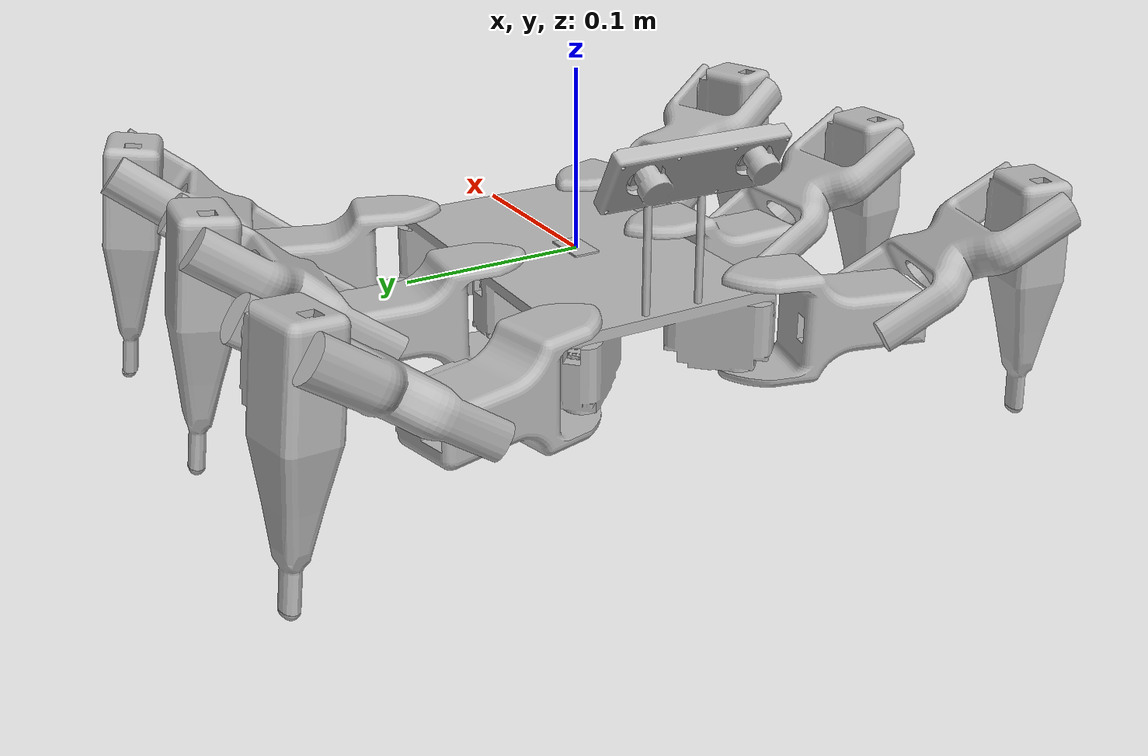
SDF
<sdf version='1.7'>
  <model name='hexaurdf10'>
    <link name='base_link'>
      <inertial>
        <pose>-0.004753 -1.4e-05 -0.012059 0 -0 0</pose>
        <mass>0.589552</mass>
        <inertia>
          <ixx>3.1084</ixx>
          <ixy>-0.254602</ixy>
          <ixz>2.03206</ixz>
          <iyy>6.37928</iyy>
          <iyz>0.164179</iyz>
          <izz>5.33195</izz>
        </inertia>
      </inertial>
      <collision name='base_link_collision'>
        <pose>0 0 0 0 -0 0</pose>
        <geometry>
          <mesh>
            <scale>1 1 1</scale>
            <uri>model://hexaurdf10/meshes/base_link.STL</uri>
          </mesh>
        </geometry>
      </collision>
      <collision name='base_link_fixed_joint_lump__camera_link_collision_1'>
        <pose>-0.113664 0.000281 0.073621 0 0.523599 3.12647</pose>
        <geometry>
          <mesh>
            <scale>1 1 1</scale>
            <uri>model://hexaurdf10/meshes/camera_link.STL</uri>
          </mesh>
        </geometry>
        <surface>
          <contact>
            <ode/>
          </contact>
          <friction>
            <ode/>
          </friction>
        </surface>
      </collision>
      <collision name='base_link_fixed_joint_lump__imu_link_collision_2'>
        <pose>-0.0001 0 0.001 0 -0 0</pose>
        <geometry>
          <mesh>
            <scale>1 1 1</scale>
            <uri>model://hexaurdf10/meshes/imu_link.STL</uri>
          </mesh>
        </geometry>
        <surface>
          <contact>
            <ode/>
          </contact>
          <friction>
            <ode/>
          </friction>
        </surface>
      </collision>
      <visual name='base_link_visual'>
        <pose>0 0 0 0 -0 0</pose>
        <geometry>
          <mesh>
            <scale>1 1 1</scale>
            <uri>model://hexaurdf10/meshes/base_link.STL</uri>
          </mesh>
        </geometry>
      </visual>
      <visual name='base_link_fixed_joint_lump__camera_link_visual_1'>
        <pose>-0.113664 0.000281 0.073621 0 0.523599 3.12647</pose>
        <geometry>
          <mesh>
            <scale>1 1 1</scale>
            <uri>model://hexaurdf10/meshes/camera_link.STL</uri>
          </mesh>
        </geometry>
      </visual>
      <visual name='base_link_fixed_joint_lump__imu_link_visual_2'>
        <pose>-0.0001 0 0.001 0 -0 0</pose>
        <geometry>
          <mesh>
            <scale>1 1 1</scale>
            <uri>model://hexaurdf10/meshes/imu_link.STL</uri>
          </mesh>
        </geometry>
      </visual>
      <sensor name='camera_link_camera' type='depth'>
        <update_rate>20</update_rate>
        <camera>
          <horizontal_fov>1.0472</horizontal_fov>
          <image>
            <width>640</width>
            <height>480</height>
            <format>R8G8B8</format>
          </image>
          <clip>
            <near>0.05</near>
            <far>3</far>
          </clip>
        </camera>
        <plugin name='camera_link_controller' filename='libgazebo_ros_openni_kinect.so'>
          <baseline>0.2</baseline>
          <alwaysOn>1</alwaysOn>
          <updateRate>1.0</updateRate>
          <cameraName>camera_link_ir</cameraName>
          <imageTopicName>/camera_link/color/image_raw</imageTopicName>
          <cameraInfoTopicName>/camera_link/color/camera_info</cameraInfoTopicName>
          <depthImageTopicName>/camera_link/depth/image_raw</depthImageTopicName>
          <depthImageInfoTopicName>/camera_link/depth/camera_info</depthImageInfoTopicName>
          <pointCloudTopicName>/camera_link/depth/points</pointCloudTopicName>
          <frameName>camera_link</frameName>
          <pointCloudCutoff>0.5</pointCloudCutoff>
          <pointCloudCutoffMax>3.0</pointCloudCutoffMax>
          <distortionK1>0.00000001</distortionK1>
          <distortionK2>0.00000001</distortionK2>
          <distortionK3>0.00000001</distortionK3>
          <distortionT1>0.00000001</distortionT1>
          <distortionT2>0.00000001</distortionT2>
          <CxPrime>0</CxPrime>
          <Cx>0</Cx>
          <Cy>0</Cy>
          <focalLength>0</focalLength>
          <hackBaseline>0</hackBaseline>
        </plugin>
        <pose>-0.113664 0.000281 0.073621 0 0.523599 3.12647</pose>
      </sensor>
      <gravity>1</gravity>
      <sensor name='imu_sensor' type='imu'>
        <always_on>1</always_on>
        <update_rate>100</update_rate>
        <visualize>1</visualize>
        <topic>__default_topic__</topic>
        <plugin name='imu_plugin' filename='libgazebo_ros_imu_sensor.so'>
          <topicName>imu</topicName>
          <bodyName>imu_link</bodyName>
          <updateRateHZ>10.0</updateRateHZ>
          <gaussianNoise>0.0</gaussianNoise>
          <xyzOffset>0 0 0</xyzOffset>
          <rpyOffset>0 0 0</rpyOffset>
          <frameName>imu_link</frameName>
          <initialOrientationAsReference>0</initialOrientationAsReference>
        </plugin>
        <pose>-0.0001 0 0.001 0 -0 0</pose>
      </sensor>
    </link>
    <joint name='j_c1_lf' type='revolute'>
      <pose relative_to='base_link'>-0.087434 -0.047179 -0.05093 0 -0 0</pose>
      <parent>base_link</parent>
      <child>c1_lf</child>
      <axis>
        <xyz>0 0 -1</xyz>
        <limit>
          <lower>-1.57</lower>
          <upper>1.57</upper>
          <effort>100</effort>
          <velocity>100</velocity>
        </limit>
        <dynamics>
          <spring_reference>0</spring_reference>
          <spring_stiffness>0</spring_stiffness>
        </dynamics>
      </axis>
    </joint>
    <link name='c1_lf'>
      <pose relative_to='j_c1_lf'>0 0 0 0 -0 0</pose>
      <inertial>
        <pose>-0.010556 -0.053368 0.028245 0 -0 0</pose>
        <mass>0.11513</mass>
        <inertia>
          <ixx>0.00514111</ixx>
          <ixy>-0.000575303</ixy>
          <ixz>-2.4729e-05</ixz>
          <iyy>0.00819157</iyy>
          <iyz>-1.92231e-05</iyz>
          <izz>0.00113798</izz>
        </inertia>
      </inertial>
      <collision name='c1_lf_collision'>
        <pose>0 0 0 0 -0 0</pose>
        <geometry>
          <mesh>
            <scale>1 1 1</scale>
            <uri>model://hexaurdf10/meshes/c1_lf.STL</uri>
          </mesh>
        </geometry>
      </collision>
      <visual name='c1_lf_visual'>
        <pose>0 0 0 0 -0 0</pose>
        <geometry>
          <mesh>
            <scale>1 1 1</scale>
            <uri>model://hexaurdf10/meshes/c1_lf.STL</uri>
          </mesh>
        </geometry>
      </visual>
    </link>
    <joint name='j_thigh_lf' type='revolute'>
      <pose relative_to='c1_lf'>0.015709 -0.086037 0.0282 0 -0 0</pose>
      <parent>c1_lf</parent>
      <child>thigh_lf</child>
      <axis>
        <xyz>-0.990437 0.137968 0</xyz>
        <limit>
          <lower>-1.57</lower>
          <upper>1.57</upper>
          <effort>100</effort>
          <velocity>100</velocity>
        </limit>
        <dynamics>
          <spring_reference>0</spring_reference>
          <spring_stiffness>0</spring_stiffness>
        </dynamics>
      </axis>
    </joint>
    <link name='thigh_lf'>
      <pose relative_to='j_thigh_lf'>0 0 0 0 -0 0</pose>
      <inertial>
        <pose>-0.040507 -0.036953 0.025841 0 -0 0</pose>
        <mass>0.066086</mass>
        <inertia>
          <ixx>0.00514111</ixx>
          <ixy>-0.000575303</ixy>
          <ixz>-2.4729e-05</ixz>
          <iyy>0.00819157</iyy>
          <iyz>-1.92231e-05</iyz>
          <izz>0.00113798</izz>
        </inertia>
      </inertial>
      <collision name='thigh_lf_collision'>
        <pose>0 0 0 0 -0 0</pose>
        <geometry>
          <mesh>
            <scale>1 1 1</scale>
            <uri>model://hexaurdf10/meshes/thigh_lf.STL</uri>
          </mesh>
        </geometry>
      </collision>
      <visual name='thigh_lf_visual'>
        <pose>0 0 0 0 -0 0</pose>
        <geometry>
          <mesh>
            <scale>1 1 1</scale>
            <uri>model://hexaurdf10/meshes/thigh_lf.STL</uri>
          </mesh>
        </geometry>
      </visual>
    </link>
    <joint name='j_tibia_lf' type='revolute'>
      <pose relative_to='thigh_lf'>-0.023019 -0.082153 0.048284 0 -0 0</pose>
      <parent>thigh_lf</parent>
      <child>tibia_lf</child>
      <axis>
        <xyz>-0.990437 0.137968 0</xyz>
        <limit>
          <lower>-1.57</lower>
          <upper>1.57</upper>
          <effort>100</effort>
          <velocity>100</velocity>
        </limit>
        <dynamics>
          <spring_reference>0</spring_reference>
          <spring_stiffness>0</spring_stiffness>
        </dynamics>
      </axis>
    </joint>
    <link name='tibia_lf'>
      <pose relative_to='j_tibia_lf'>0 0 0 0 -0 0</pose>
      <inertial>
        <pose>-0.03042 0.006502 -0.024404 0 -0 0</pose>
        <mass>0.083403</mass>
        <inertia>
          <ixx>0.00514332</ixx>
          <ixy>-0.000575305</ixy>
          <ixz>-2.4807e-05</ixz>
          <iyy>0.00819378</iyy>
          <iyz>-1.93052e-05</iyz>
          <izz>0.00113799</izz>
        </inertia>
      </inertial>
      <collision name='tibia_lf_collision'>
        <pose>0 0 0 0 -0 0</pose>
        <geometry>
          <mesh>
            <scale>1 1 1</scale>
            <uri>model://hexaurdf10/meshes/tibia_lf.STL</uri>
          </mesh>
        </geometry>
      </collision>
      <collision name='tibia_lf_fixed_joint_lump__tip6_collision_1'>
        <pose>-0.033825 0.002881 -0.121195 0 -0 0</pose>
        <geometry>
          <mesh>
            <scale>1 1 1</scale>
            <uri>model://hexaurdf10/meshes/tip6.STL</uri>
          </mesh>
        </geometry>
        <surface>
          <contact>
            <ode>
              <kp>1e+06</kp>
              <kd>1</kd>
            </ode>
          </contact>
          <friction>
            <ode>
              <mu>2000</mu>
              <mu2>1000</mu2>
            </ode>
          </friction>
        </surface>
      </collision>
      <visual name='tibia_lf_visual'>
        <pose>0 0 0 0 -0 0</pose>
        <geometry>
          <mesh>
            <scale>1 1 1</scale>
            <uri>model://hexaurdf10/meshes/tibia_lf.STL</uri>
          </mesh>
        </geometry>
      </visual>
      <visual name='tibia_lf_fixed_joint_lump__tip6_visual_1'>
        <pose>-0.033825 0.002881 -0.121195 0 -0 0</pose>
        <geometry>
          <mesh>
            <scale>1 1 1</scale>
            <uri>model://hexaurdf10/meshes/tip6.STL</uri>
          </mesh>
        </geometry>
      </visual>
      <sensor name='tip6_sensor' type='contact'>
        <always_on>1</always_on>
        <contact>
          <collision>tibia_lf_fixed_joint_lump__tip6_collision_5</collision>
          <topic>__default_topic__</topic>
        </contact>
        <plugin name='tip6_plugin' filename='libgazebo_ros_bumper.so'>
          <bumperTopicName>tip6_contactsensor_state</bumperTopicName>
          <frameName>tip6</frameName>
        </plugin>
        <pose>-0.033825 0.002881 -0.121195 0 -0 0</pose>
      </sensor>
    </link>
    <joint name='j_c1_lm' type='revolute'>
      <pose relative_to='base_link'>-0.00021 -0.041978 -0.05093 0 -0 0</pose>
      <parent>base_link</parent>
      <child>c1_lm</child>
      <axis>
        <xyz>0 0 -1</xyz>
        <limit>
          <lower>-1.57</lower>
          <upper>1.57</upper>
          <effort>100</effort>
          <velocity>100</velocity>
        </limit>
        <dynamics>
          <spring_reference>0</spring_reference>
          <spring_stiffness>0</spring_stiffness>
        </dynamics>
      </axis>
    </joint>
    <link name='c1_lm'>
      <pose relative_to='j_c1_lm'>0 0 0 0 -0 0</pose>
      <inertial>
        <pose>0.004105 -0.054247 0.028245 0 -0 0</pose>
        <mass>0.115131</mass>
        <inertia>
          <ixx>0.00514111</ixx>
          <ixy>-0.000575303</ixy>
          <ixz>-2.4729e-05</ixz>
          <iyy>0.00819157</iyy>
          <iyz>-1.92231e-05</iyz>
          <izz>0.00113798</izz>
        </inertia>
      </inertial>
      <collision name='c1_lm_collision'>
        <pose>0 0 0 0 -0 0</pose>
        <geometry>
          <mesh>
            <scale>1 1 1</scale>
            <uri>model://hexaurdf10/meshes/c1_lm.STL</uri>
          </mesh>
        </geometry>
      </collision>
      <visual name='c1_lm_visual'>
        <pose>0 0 0 0 -0 0</pose>
        <geometry>
          <mesh>
            <scale>1 1 1</scale>
            <uri>model://hexaurdf10/meshes/c1_lm.STL</uri>
          </mesh>
        </geometry>
      </visual>
    </link>
    <joint name='j_thigh_lm' type='revolute'>
      <pose relative_to='c1_lm'>0.038152 -0.078699 0.0282 0 -0 0</pose>
      <parent>c1_lm</parent>
      <child>thigh_lm</child>
      <axis>
        <xyz>-0.99577 0.09188 0</xyz>
        <limit>
          <lower>-1.57</lower>
          <upper>1.57</upper>
          <effort>100</effort>
          <velocity>100</velocity>
        </limit>
        <dynamics>
          <spring_reference>0</spring_reference>
          <spring_stiffness>0</spring_stiffness>
        </dynamics>
      </axis>
    </joint>
    <link name='thigh_lm'>
      <pose relative_to='j_thigh_lm'>0 0 0 0 -0 0</pose>
      <inertial>
        <pose>-0.029146 -0.046442 0.025841 0 -0 0</pose>
        <mass>0.0660859</mass>
        <inertia>
          <ixx>0.00514111</ixx>
          <ixy>-0.000575303</ixy>
          <ixz>-2.4729e-05</ixz>
          <iyy>0.00819157</iyy>
          <iyz>-1.92231e-05</iyz>
          <izz>0.00113798</izz>
        </inertia>
      </inertial>
      <collision name='thigh_lm_collision'>
        <pose>0 0 0 0 -0 0</pose>
        <geometry>
          <mesh>
            <scale>1 1 1</scale>
            <uri>model://hexaurdf10/meshes/thigh_lm.STL</uri>
          </mesh>
        </geometry>
      </collision>
      <visual name='thigh_lm_visual'>
        <pose>0 0 0 0 -0 0</pose>
        <geometry>
          <mesh>
            <scale>1 1 1</scale>
            <uri>model://hexaurdf10/meshes/thigh_lm.STL</uri>
          </mesh>
        </geometry>
      </visual>
    </link>
    <joint name='j_tibia_lm' type='revolute'>
      <pose relative_to='thigh_lm'>-0.000204 -0.085316 0.048284 0 -0 0</pose>
      <parent>thigh_lm</parent>
      <child>tibia_lm</child>
      <axis>
        <xyz>-0.99577 0.09188 0</xyz>
        <limit>
          <lower>-1.57</lower>
          <upper>1.57</upper>
          <effort>100</effort>
          <velocity>100</velocity>
        </limit>
        <dynamics>
          <spring_reference>0</spring_reference>
          <spring_stiffness>0</spring_stiffness>
        </dynamics>
      </axis>
    </joint>
    <link name='tibia_lm'>
      <pose relative_to='j_tibia_lm'>0 0 0 0 -0 0</pose>
      <inertial>
        <pose>-0.03105 -0.001873 -0.024404 0 -0 0</pose>
        <mass>0.083403</mass>
        <inertia>
          <ixx>0.00514332</ixx>
          <ixy>-0.000575305</ixy>
          <ixz>-2.47822e-05</ixz>
          <iyy>0.00819378</iyy>
          <iyz>-1.93231e-05</iyz>
          <izz>0.00113799</izz>
        </inertia>
      </inertial>
      <collision name='tibia_lm_collision'>
        <pose>0 0 0 0 -0 0</pose>
        <geometry>
          <mesh>
            <scale>1 1 1</scale>
            <uri>model://hexaurdf10/meshes/tibia_lm.STL</uri>
          </mesh>
        </geometry>
      </collision>
      <collision name='tibia_lm_fixed_joint_lump__tip5_collision_1'>
        <pose>-0.033363 -0.006272 -0.121195 0 -0 0</pose>
        <geometry>
          <mesh>
            <scale>1 1 1</scale>
            <uri>model://hexaurdf10/meshes/tip5.STL</uri>
          </mesh>
        </geometry>
        <surface>
          <contact>
            <ode>
              <kp>1e+06</kp>
              <kd>1</kd>
            </ode>
          </contact>
          <friction>
            <ode>
              <mu>2000</mu>
              <mu2>1000</mu2>
            </ode>
          </friction>
        </surface>
      </collision>
      <visual name='tibia_lm_visual'>
        <pose>0 0 0 0 -0 0</pose>
        <geometry>
          <mesh>
            <scale>1 1 1</scale>
            <uri>model://hexaurdf10/meshes/tibia_lm.STL</uri>
          </mesh>
        </geometry>
      </visual>
      <visual name='tibia_lm_fixed_joint_lump__tip5_visual_1'>
        <pose>-0.033363 -0.006272 -0.121195 0 -0 0</pose>
        <geometry>
          <mesh>
            <scale>1 1 1</scale>
            <uri>model://hexaurdf10/meshes/tip5.STL</uri>
          </mesh>
        </geometry>
      </visual>
      <sensor name='tip5_sensor' type='contact'>
        <always_on>1</always_on>
        <contact>
          <collision>tibia_lm_fixed_joint_lump__tip5_collision_5</collision>
          <topic>__default_topic__</topic>
        </contact>
        <plugin name='tip5_plugin' filename='libgazebo_ros_bumper.so'>
          <bumperTopicName>tip5_contactsensor_state</bumperTopicName>
          <frameName>tip5</frameName>
        </plugin>
        <pose>-0.033363 -0.006272 -0.121195 0 -0 0</pose>
      </sensor>
    </link>
    <joint name='j_c1_lr' type='revolute'>
      <pose relative_to='base_link'>0.087079 -0.047334 -0.05093 0 -0 0</pose>
      <parent>base_link</parent>
      <child>c1_lr</child>
      <axis>
        <xyz>0 0 -1</xyz>
        <limit>
          <lower>-1.57</lower>
          <upper>1.57</upper>
          <effort>100</effort>
          <velocity>100</velocity>
        </limit>
        <dynamics>
          <spring_reference>0</spring_reference>
          <spring_stiffness>0</spring_stiffness>
        </dynamics>
      </axis>
    </joint>
    <link name='c1_lr'>
      <pose relative_to='j_c1_lr'>0 0 0 0 -0 0</pose>
      <inertial>
        <pose>0.018403 -0.051195 0.028245 0 -0 0</pose>
        <mass>0.11513</mass>
        <inertia>
          <ixx>0.00514111</ixx>
          <ixy>-0.000575303</ixy>
          <ixz>-2.4729e-05</ixz>
          <iyy>0.00819157</iyy>
          <iyz>-1.92231e-05</iyz>
          <izz>0.00113798</izz>
        </inertia>
      </inertial>
      <collision name='c1_lr_collision'>
        <pose>0 0 0 0 -0 0</pose>
        <geometry>
          <mesh>
            <scale>1 1 1</scale>
            <uri>model://hexaurdf10/meshes/c1_lr.STL</uri>
          </mesh>
        </geometry>
      </collision>
      <visual name='c1_lr_visual'>
        <pose>0 0 0 0 -0 0</pose>
        <geometry>
          <mesh>
            <scale>1 1 1</scale>
            <uri>model://hexaurdf10/meshes/c1_lr.STL</uri>
          </mesh>
        </geometry>
      </visual>
    </link>
    <joint name='j_thigh_lr' type='revolute'>
      <pose relative_to='c1_lr'>0.057732 -0.065698 0.0282 0 -0 0</pose>
      <parent>c1_lr</parent>
      <child>thigh_lr</child>
      <axis>
        <xyz>-0.956375 -0.29214 0</xyz>
        <limit>
          <lower>-1.57</lower>
          <upper>1.57</upper>
          <effort>100</effort>
          <velocity>100</velocity>
        </limit>
        <dynamics>
          <spring_reference>0</spring_reference>
          <spring_stiffness>0</spring_stiffness>
        </dynamics>
      </axis>
    </joint>
    <link name='thigh_lr'>
      <pose relative_to='j_thigh_lr'>0 0 0 0 -0 0</pose>
      <inertial>
        <pose>-0.015726 -0.052527 0.025841 0 -0 0</pose>
        <mass>0.066086</mass>
        <inertia>
          <ixx>0.00514111</ixx>
          <ixy>-0.000575303</ixy>
          <ixz>-2.4729e-05</ixz>
          <iyy>0.00819157</iyy>
          <iyz>-1.92231e-05</iyz>
          <izz>0.00113798</izz>
        </inertia>
      </inertial>
      <collision name='thigh_lr_collision'>
        <pose>0 0 0 0 -0 0</pose>
        <geometry>
          <mesh>
            <scale>1 1 1</scale>
            <uri>model://hexaurdf10/meshes/thigh_lr.STL</uri>
          </mesh>
        </geometry>
      </collision>
      <visual name='thigh_lr_visual'>
        <pose>0 0 0 0 -0 0</pose>
        <geometry>
          <mesh>
            <scale>1 1 1</scale>
            <uri>model://hexaurdf10/meshes/thigh_lr.STL</uri>
          </mesh>
        </geometry>
      </visual>
    </link>
    <joint name='j_tibia_lr' type='revolute'>
      <pose relative_to='thigh_lr'>0.022523 -0.08229 0.048284 0 -0 0</pose>
      <parent>thigh_lr</parent>
      <child>tibia_lr</child>
      <axis>
        <xyz>-0.956375 -0.29214 0</xyz>
        <limit>
          <lower>-1.57</lower>
          <upper>1.57</upper>
          <effort>100</effort>
          <velocity>100</velocity>
        </limit>
        <dynamics>
          <spring_reference>0</spring_reference>
          <spring_stiffness>0</spring_stiffness>
        </dynamics>
      </axis>
    </joint>
    <link name='tibia_lr'>
      <pose relative_to='j_tibia_lr'>0 0 0 0 -0 0</pose>
      <inertial>
        <pose>-0.029431 -0.010074 -0.024404 0 -0 0</pose>
        <mass>0.083403</mass>
        <inertia>
          <ixx>0.00514332</ixx>
          <ixy>-0.000575304</ixy>
          <ixz>-2.47537e-05</ixz>
          <iyy>0.00819378</iyy>
          <iyz>-1.93337e-05</iyz>
          <izz>0.00113799</izz>
        </inertia>
      </inertial>
      <collision name='tibia_lr_collision'>
        <pose>0 0 0 0 -0 0</pose>
        <geometry>
          <mesh>
            <scale>1 1 1</scale>
            <uri>model://hexaurdf10/meshes/tibia_lr.STL</uri>
          </mesh>
        </geometry>
      </collision>
      <collision name='tibia_lr_fixed_joint_lump__tip4_collision_1'>
        <pose>-0.030488 -0.01493 -0.121195 0 -0 0</pose>
        <geometry>
          <mesh>
            <scale>1 1 1</scale>
            <uri>model://hexaurdf10/meshes/tip4.STL</uri>
          </mesh>
        </geometry>
        <surface>
          <contact>
            <ode>
              <kp>1e+06</kp>
              <kd>1</kd>
            </ode>
          </contact>
          <friction>
            <ode>
              <mu>2000</mu>
              <mu2>1000</mu2>
            </ode>
          </friction>
        </surface>
      </collision>
      <visual name='tibia_lr_visual'>
        <pose>0 0 0 0 -0 0</pose>
        <geometry>
          <mesh>
            <scale>1 1 1</scale>
            <uri>model://hexaurdf10/meshes/tibia_lr.STL</uri>
          </mesh>
        </geometry>
      </visual>
      <visual name='tibia_lr_fixed_joint_lump__tip4_visual_1'>
        <pose>-0.030488 -0.01493 -0.121195 0 -0 0</pose>
        <geometry>
          <mesh>
            <scale>1 1 1</scale>
            <uri>model://hexaurdf10/meshes/tip4.STL</uri>
          </mesh>
        </geometry>
      </visual>
      <sensor name='tip4_sensor' type='contact'>
        <always_on>1</always_on>
        <contact>
          <collision>tibia_lr_fixed_joint_lump__tip4_collision_5</collision>
          <topic>__default_topic__</topic>
        </contact>
        <plugin name='tip4_plugin' filename='libgazebo_ros_bumper.so'>
          <bumperTopicName>tip4_contactsensor_state</bumperTopicName>
          <frameName>tip4</frameName>
        </plugin>
        <pose>-0.030488 -0.01493 -0.121195 0 -0 0</pose>
      </sensor>
    </link>
    <joint name='j_c1_rf' type='revolute'>
      <pose relative_to='base_link'>-0.087434 0.047179 -0.05093 0 -0 0</pose>
      <parent>base_link</parent>
      <child>c1_rf</child>
      <axis>
        <xyz>0 0 1</xyz>
        <limit>
          <lower>-1.57</lower>
          <upper>1.57</upper>
          <effort>100</effort>
          <velocity>100</velocity>
        </limit>
        <dynamics>
          <spring_reference>0</spring_reference>
          <spring_stiffness>0</spring_stiffness>
        </dynamics>
      </axis>
    </joint>
    <link name='c1_rf'>
      <pose relative_to='j_c1_rf'>0 0 0 0 -0 0</pose>
      <inertial>
        <pose>-0.009967 0.053482 0.028313 0 -0 0</pose>
        <mass>0.11513</mass>
        <inertia>
          <ixx>0.00514111</ixx>
          <ixy>-0.000575303</ixy>
          <ixz>-2.4729e-05</ixz>
          <iyy>0.00819157</iyy>
          <iyz>-1.92231e-05</iyz>
          <izz>0.00113798</izz>
        </inertia>
      </inertial>
      <collision name='c1_rf_collision'>
        <pose>0 0 0 0 -0 0</pose>
        <geometry>
          <mesh>
            <scale>1 1 1</scale>
            <uri>model://hexaurdf10/meshes/c1_rf.STL</uri>
          </mesh>
        </geometry>
      </collision>
      <visual name='c1_rf_visual'>
        <pose>0 0 0 0 -0 0</pose>
        <geometry>
          <mesh>
            <scale>1 1 1</scale>
            <uri>model://hexaurdf10/meshes/c1_rf.STL</uri>
          </mesh>
        </geometry>
      </visual>
    </link>
    <joint name='j_thigh_rf' type='revolute'>
      <pose relative_to='c1_rf'>0.016657 0.085859 0.0282 0 -0 0</pose>
      <parent>c1_rf</parent>
      <child>thigh_rf</child>
      <axis>
        <xyz>0.97301 0.23076 0</xyz>
        <limit>
          <lower>-1.57</lower>
          <upper>1.57</upper>
          <effort>100</effort>
          <velocity>100</velocity>
        </limit>
        <dynamics>
          <spring_reference>0</spring_reference>
          <spring_stiffness>0</spring_stiffness>
        </dynamics>
      </axis>
    </joint>
    <link name='thigh_rf'>
      <pose relative_to='j_thigh_rf'>0 0 0 0 -0 0</pose>
      <inertial>
        <pose>-0.039246 0.033811 0.031475 0 -0 0</pose>
        <mass>0.0660859</mass>
        <inertia>
          <ixx>0.00514111</ixx>
          <ixy>-0.000575303</ixy>
          <ixz>-2.4729e-05</ixz>
          <iyy>0.00819157</iyy>
          <iyz>-1.92231e-05</iyz>
          <izz>0.00113798</izz>
        </inertia>
      </inertial>
      <collision name='thigh_rf_collision'>
        <pose>0 0 0 0 -0 0</pose>
        <geometry>
          <mesh>
            <scale>1 1 1</scale>
            <uri>model://hexaurdf10/meshes/thigh_rf.STL</uri>
          </mesh>
        </geometry>
      </collision>
      <visual name='thigh_rf_visual'>
        <pose>0 0 0 0 -0 0</pose>
        <geometry>
          <mesh>
            <scale>1 1 1</scale>
            <uri>model://hexaurdf10/meshes/thigh_rf.STL</uri>
          </mesh>
        </geometry>
      </visual>
    </link>
    <joint name='j_tibia_rf' type='revolute'>
      <pose relative_to='thigh_rf'>-0.020522 0.075699 0.058811 0 -0 0</pose>
      <parent>thigh_rf</parent>
      <child>tibia_rf</child>
      <axis>
        <xyz>0.973011 0.23076 0</xyz>
        <limit>
          <lower>-1.57</lower>
          <upper>1.57</upper>
          <effort>100</effort>
          <velocity>100</velocity>
        </limit>
        <dynamics>
          <spring_reference>0</spring_reference>
          <spring_stiffness>0</spring_stiffness>
        </dynamics>
      </axis>
    </joint>
    <link name='tibia_rf'>
      <pose relative_to='j_tibia_rf'>0 0 0 0 -0 0</pose>
      <inertial>
        <pose>-0.030929 -0.004313 -0.024248 0 -0 0</pose>
        <mass>0.083403</mass>
        <inertia>
          <ixx>0.00514331</ixx>
          <ixy>-0.00057529</ixy>
          <ixz>-2.4845e-05</ixz>
          <iyy>0.00819375</iyy>
          <iyz>-1.89747e-05</iyz>
          <izz>0.00113802</izz>
        </inertia>
      </inertial>
      <collision name='tibia_rf_collision'>
        <pose>0 0 0 0 -0 0</pose>
        <geometry>
          <mesh>
            <scale>1 1 1</scale>
            <uri>model://hexaurdf10/meshes/tibia_rf.STL</uri>
          </mesh>
        </geometry>
      </collision>
      <collision name='tibia_rf_fixed_joint_lump__tip1_collision_1'>
        <pose>-0.036037 0.006692 -0.1204 0 -0 0</pose>
        <geometry>
          <mesh>
            <scale>1 1 1</scale>
            <uri>model://hexaurdf10/meshes/tip1.STL</uri>
          </mesh>
        </geometry>
        <surface>
          <contact>
            <ode>
              <kp>1e+06</kp>
              <kd>1</kd>
            </ode>
          </contact>
          <friction>
            <ode>
              <mu>2000</mu>
              <mu2>1000</mu2>
            </ode>
          </friction>
        </surface>
      </collision>
      <visual name='tibia_rf_visual'>
        <pose>0 0 0 0 -0 0</pose>
        <geometry>
          <mesh>
            <scale>1 1 1</scale>
            <uri>model://hexaurdf10/meshes/tibia_rf.STL</uri>
          </mesh>
        </geometry>
      </visual>
      <visual name='tibia_rf_fixed_joint_lump__tip1_visual_1'>
        <pose>-0.036037 0.006692 -0.1204 0 -0 0</pose>
        <geometry>
          <mesh>
            <scale>1 1 1</scale>
            <uri>model://hexaurdf10/meshes/tip1.STL</uri>
          </mesh>
        </geometry>
      </visual>
      <sensor name='tip1_sensor' type='contact'>
        <always_on>1</always_on>
        <contact>
          <collision>tibia_rf_fixed_joint_lump__tip1_collision_5</collision>
          <topic>__default_topic__</topic>
        </contact>
        <plugin name='back_left_foot_plugin' filename='libgazebo_ros_bumper.so'>
          <bumperTopicName>tip1_contactsensor_state</bumperTopicName>
          <frameName>tip1</frameName>
        </plugin>
        <pose>-0.036037 0.006692 -0.1204 0 -0 0</pose>
      </sensor>
    </link>
    <joint name='j_c1_rm' type='revolute'>
      <pose relative_to='base_link'>1e-05 0.041978 -0.05093 0 -0 0</pose>
      <parent>base_link</parent>
      <child>c1_rm</child>
      <axis>
        <xyz>0 0 1</xyz>
        <limit>
          <lower>-1.57</lower>
          <upper>1.57</upper>
          <effort>100</effort>
          <velocity>100</velocity>
        </limit>
        <dynamics>
          <spring_reference>0</spring_reference>
          <spring_stiffness>0</spring_stiffness>
        </dynamics>
      </axis>
    </joint>
    <link name='c1_rm'>
      <pose relative_to='j_c1_rm'>0 0 0 0 -0 0</pose>
      <inertial>
        <pose>0.007026 0.053947 0.028313 0 -0 0</pose>
        <mass>0.115131</mass>
        <inertia>
          <ixx>0.00514111</ixx>
          <ixy>-0.000575303</ixy>
          <ixz>-2.4729e-05</ixz>
          <iyy>0.00819157</iyy>
          <iyz>-1.92231e-05</iyz>
          <izz>0.00113798</izz>
        </inertia>
      </inertial>
      <collision name='c1_rm_collision'>
        <pose>0 0 0 0 -0 0</pose>
        <geometry>
          <mesh>
            <scale>1 1 1</scale>
            <uri>model://hexaurdf10/meshes/c1_rm.STL</uri>
          </mesh>
        </geometry>
      </collision>
      <visual name='c1_rm_visual'>
        <pose>0 0 0 0 -0 0</pose>
        <geometry>
          <mesh>
            <scale>1 1 1</scale>
            <uri>model://hexaurdf10/meshes/c1_rm.STL</uri>
          </mesh>
        </geometry>
      </visual>
    </link>
    <joint name='j_thigh_rm' type='revolute'>
      <pose relative_to='c1_rm'>0.042342 0.076526 0.0282 0 -0 0</pose>
      <parent>c1_rm</parent>
      <child>thigh_rm</child>
      <axis>
        <xyz>0.99673 -0.080808 0</xyz>
        <limit>
          <lower>-1.57</lower>
          <upper>1.57</upper>
          <effort>100</effort>
          <velocity>100</velocity>
        </limit>
        <dynamics>
          <spring_reference>0</spring_reference>
          <spring_stiffness>0</spring_stiffness>
        </dynamics>
      </axis>
    </joint>
    <link name='thigh_rm'>
      <pose relative_to='j_thigh_rm'>0 0 0 0 -0 0</pose>
      <inertial>
        <pose>-0.026895 0.044273 0.031475 0 -0 0</pose>
        <mass>0.0660859</mass>
        <inertia>
          <ixx>0.00514111</ixx>
          <ixy>-0.000575303</ixy>
          <ixz>-2.4729e-05</ixz>
          <iyy>0.00819157</iyy>
          <iyz>-1.92231e-05</iyz>
          <izz>0.00113798</izz>
        </inertia>
      </inertial>
      <collision name='thigh_rm_collision'>
        <pose>0 0 0 0 -0 0</pose>
        <geometry>
          <mesh>
            <scale>1 1 1</scale>
            <uri>model://hexaurdf10/meshes/thigh_rm.STL</uri>
          </mesh>
        </geometry>
      </collision>
      <visual name='thigh_rm_visual'>
        <pose>0 0 0 0 -0 0</pose>
        <geometry>
          <mesh>
            <scale>1 1 1</scale>
            <uri>model://hexaurdf10/meshes/thigh_rm.STL</uri>
          </mesh>
        </geometry>
      </visual>
    </link>
    <joint name='j_tibia_rm' type='revolute'>
      <pose relative_to='thigh_rm'>0.003843 0.078338 0.058811 0 -0 0</pose>
      <parent>thigh_rm</parent>
      <child>tibia_rm</child>
      <axis>
        <xyz>0.99673 -0.080808 0</xyz>
        <limit>
          <lower>-1.57</lower>
          <upper>1.57</upper>
          <effort>100</effort>
          <velocity>100</velocity>
        </limit>
        <dynamics>
          <spring_reference>0</spring_reference>
          <spring_stiffness>0</spring_stiffness>
        </dynamics>
      </axis>
    </joint>
    <link name='tibia_rm'>
      <pose relative_to='j_tibia_rm'>0 0 0 0 -0 0</pose>
      <inertial>
        <pose>-0.03075 0.005443 -0.024248 0 -0 0</pose>
        <mass>0.0834029</mass>
        <inertia>
          <ixx>0.00514332</ixx>
          <ixy>-0.000575298</ixy>
          <ixz>-2.47627e-05</ixz>
          <iyy>0.00819375</iyy>
          <iyz>-1.89511e-05</iyz>
          <izz>0.00113802</izz>
        </inertia>
      </inertial>
      <collision name='tibia_rm_collision'>
        <pose>0 0 0 0 -0 0</pose>
        <geometry>
          <mesh>
            <scale>1 1 1</scale>
            <uri>model://hexaurdf10/meshes/tibia_rm.STL</uri>
          </mesh>
        </geometry>
      </collision>
      <collision name='tibia_rm_fixed_joint_lump__tip2_collision_1'>
        <pose>-0.032212 0.017488 -0.1204 0 -0 0</pose>
        <geometry>
          <mesh>
            <scale>1 1 1</scale>
            <uri>model://hexaurdf10/meshes/tip2.STL</uri>
          </mesh>
        </geometry>
        <surface>
          <contact>
            <ode>
              <kp>1e+06</kp>
              <kd>1</kd>
            </ode>
          </contact>
          <friction>
            <ode>
              <mu>2000</mu>
              <mu2>1000</mu2>
            </ode>
          </friction>
        </surface>
      </collision>
      <visual name='tibia_rm_visual'>
        <pose>0 0 0 0 -0 0</pose>
        <geometry>
          <mesh>
            <scale>1 1 1</scale>
            <uri>model://hexaurdf10/meshes/tibia_rm.STL</uri>
          </mesh>
        </geometry>
      </visual>
      <visual name='tibia_rm_fixed_joint_lump__tip2_visual_1'>
        <pose>-0.032212 0.017488 -0.1204 0 -0 0</pose>
        <geometry>
          <mesh>
            <scale>1 1 1</scale>
            <uri>model://hexaurdf10/meshes/tip2.STL</uri>
          </mesh>
        </geometry>
      </visual>
      <sensor name='tip2_sensor' type='contact'>
        <always_on>1</always_on>
        <contact>
          <collision>tibia_rm_fixed_joint_lump__tip2_collision_5</collision>
          <topic>__default_topic__</topic>
        </contact>
        <plugin name='tip2_plugin' filename='libgazebo_ros_bumper.so'>
          <bumperTopicName>tip2_contactsensor_state</bumperTopicName>
          <frameName>tip2</frameName>
        </plugin>
        <pose>-0.032212 0.017488 -0.1204 0 -0 0</pose>
      </sensor>
    </link>
    <joint name='j_c1_rr' type='revolute'>
      <pose relative_to='base_link'>0.087235 0.047179 -0.05093 0 -0 0</pose>
      <parent>base_link</parent>
      <child>c1_rr</child>
      <axis>
        <xyz>0 0 1</xyz>
        <limit>
          <lower>-1.57</lower>
          <upper>1.57</upper>
          <effort>100</effort>
          <velocity>100</velocity>
        </limit>
        <dynamics>
          <spring_reference>0</spring_reference>
          <spring_stiffness>0</spring_stiffness>
        </dynamics>
      </axis>
    </joint>
    <link name='c1_rr'>
      <pose relative_to='j_c1_rr'>0 0 0 0 -0 0</pose>
      <inertial>
        <pose>0.0222 0.05422 0.028313 0 -0 0</pose>
        <mass>0.11513</mass>
        <inertia>
          <ixx>0.00514111</ixx>
          <ixy>-0.000575303</ixy>
          <ixz>-2.4729e-05</ixz>
          <iyy>0.00819157</iyy>
          <iyz>-1.92231e-05</iyz>
          <izz>0.00113798</izz>
        </inertia>
      </inertial>
      <collision name='c1_rr_collision'>
        <pose>0 0 0 0 -0 0</pose>
        <geometry>
          <mesh>
            <scale>1 1 1</scale>
            <uri>model://hexaurdf10/meshes/c1_rr.STL</uri>
          </mesh>
        </geometry>
      </collision>
      <visual name='c1_rr_visual'>
        <pose>0 0 0 0 -0 0</pose>
        <geometry>
          <mesh>
            <scale>1 1 1</scale>
            <uri>model://hexaurdf10/meshes/c1_rr.STL</uri>
          </mesh>
        </geometry>
      </visual>
    </link>
    <joint name='j_thigh_rr' type='revolute'>
      <pose relative_to='c1_rr'>0.061687 0.068286 0.0282 0 -0 0</pose>
      <parent>c1_rr</parent>
      <child>thigh_rr</child>
      <axis>
        <xyz>0.956611 -0.291369 0</xyz>
        <limit>
          <lower>-1.57</lower>
          <upper>1.57</upper>
          <effort>100</effort>
          <velocity>100</velocity>
        </limit>
        <dynamics>
          <spring_reference>0</spring_reference>
          <spring_stiffness>0</spring_stiffness>
        </dynamics>
      </axis>
    </joint>
    <link name='thigh_rr'>
      <pose relative_to='j_thigh_rr'>0 0 0 0 -0 0</pose>
      <inertial>
        <pose>-0.016259 0.049184 0.031475 0 -0 0</pose>
        <mass>0.066086</mass>
        <inertia>
          <ixx>0.00514111</ixx>
          <ixy>-0.000575303</ixy>
          <ixz>-2.4729e-05</ixz>
          <iyy>0.00819157</iyy>
          <iyz>-1.92231e-05</iyz>
          <izz>0.00113798</izz>
        </inertia>
      </inertial>
      <collision name='thigh_rr_collision'>
        <pose>0 0 0 0 -0 0</pose>
        <geometry>
          <mesh>
            <scale>1 1 1</scale>
            <uri>model://hexaurdf10/meshes/thigh_rr.STL</uri>
          </mesh>
        </geometry>
      </collision>
      <visual name='thigh_rr_visual'>
        <pose>0 0 0 0 -0 0</pose>
        <geometry>
          <mesh>
            <scale>1 1 1</scale>
            <uri>model://hexaurdf10/meshes/thigh_rr.STL</uri>
          </mesh>
        </geometry>
      </visual>
    </link>
    <joint name='j_tibia_rr' type='revolute'>
      <pose relative_to='thigh_rr'>0.021347 0.075471 0.058811 0 -0 0</pose>
      <parent>thigh_rr</parent>
      <child>tibia_rr</child>
      <axis>
        <xyz>0.956611 -0.291369 0</xyz>
        <limit>
          <lower>-1.57</lower>
          <upper>1.57</upper>
          <effort>100</effort>
          <velocity>100</velocity>
        </limit>
        <dynamics>
          <spring_reference>0</spring_reference>
          <spring_stiffness>0</spring_stiffness>
        </dynamics>
      </axis>
    </joint>
    <link name='tibia_rr'>
      <pose relative_to='j_tibia_rr'>0 0 0 0 -0 0</pose>
      <inertial>
        <pose>-0.028741 0.012214 -0.024248 0 -0 0</pose>
        <mass>0.083403</mass>
        <inertia>
          <ixx>0.00514332</ixx>
          <ixy>-0.000575306</ixy>
          <ixz>-2.46989e-05</ixz>
          <iyy>0.00819375</iyy>
          <iyz>-1.89449e-05</iyz>
          <izz>0.00113802</izz>
        </inertia>
      </inertial>
      <collision name='tibia_rr_collision'>
        <pose>0 0 0 0 -0 0</pose>
        <geometry>
          <mesh>
            <scale>1 1 1</scale>
            <uri>model://hexaurdf10/meshes/tibia_rr.STL</uri>
          </mesh>
        </geometry>
      </collision>
      <collision name='tibia_rr_fixed_joint_lump__tip3_collision_1'>
        <pose>-0.027459 0.024279 -0.120405 3.14159 -1.5708 0</pose>
        <geometry>
          <mesh>
            <scale>1 1 1</scale>
            <uri>model://hexaurdf10/meshes/tip3.STL</uri>
          </mesh>
        </geometry>
        <surface>
          <contact>
            <ode>
              <kp>1e+06</kp>
              <kd>1</kd>
            </ode>
          </contact>
          <friction>
            <ode>
              <mu>2000</mu>
              <mu2>1000</mu2>
            </ode>
          </friction>
        </surface>
      </collision>
      <visual name='tibia_rr_visual'>
        <pose>0 0 0 0 -0 0</pose>
        <geometry>
          <mesh>
            <scale>1 1 1</scale>
            <uri>model://hexaurdf10/meshes/tibia_rr.STL</uri>
          </mesh>
        </geometry>
      </visual>
      <visual name='tibia_rr_fixed_joint_lump__tip3_visual_1'>
        <pose>-0.027459 0.024279 -0.120405 3.14159 -1.5708 0</pose>
        <geometry>
          <mesh>
            <scale>1 1 1</scale>
            <uri>model://hexaurdf10/meshes/tip3.STL</uri>
          </mesh>
        </geometry>
      </visual>
      <sensor name='tip3_sensor' type='contact'>
        <always_on>1</always_on>
        <contact>
          <collision>tibia_rr_fixed_joint_lump__tip3_collision_5</collision>
          <topic>__default_topic__</topic>
        </contact>
        <plugin name='tip3_plugin' filename='libgazebo_ros_bumper.so'>
          <bumperTopicName>tip3_contactsensor_state</bumperTopicName>
          <frameName>tip3</frameName>
        </plugin>
        <pose>-0.027459 0.024279 -0.120405 3.14159 -1.57079 -3e-06</pose>
      </sensor>
    </link>
    <static>0</static>
    <plugin name='gazebo_ros_control' filename='libgazebo_ros_control.so'>
      <robotNamespace>/hexaurdf10</robotNamespace>
    </plugin>
  </model>
</sdf>
